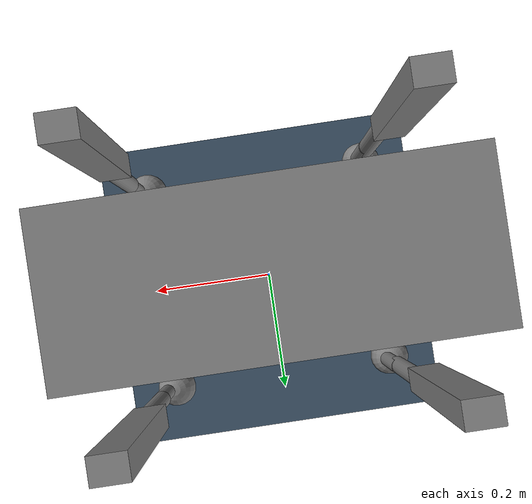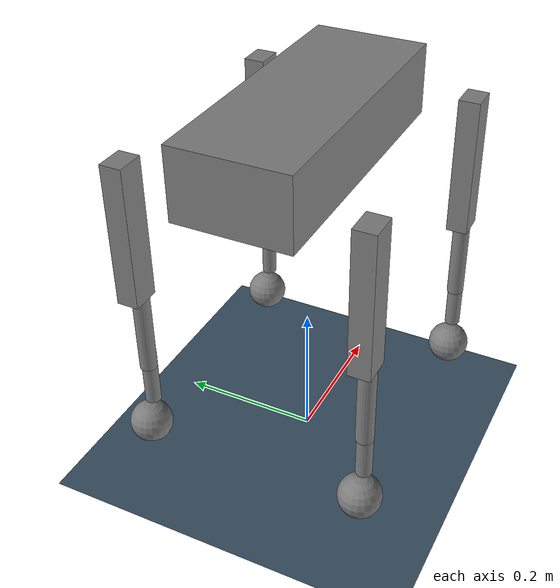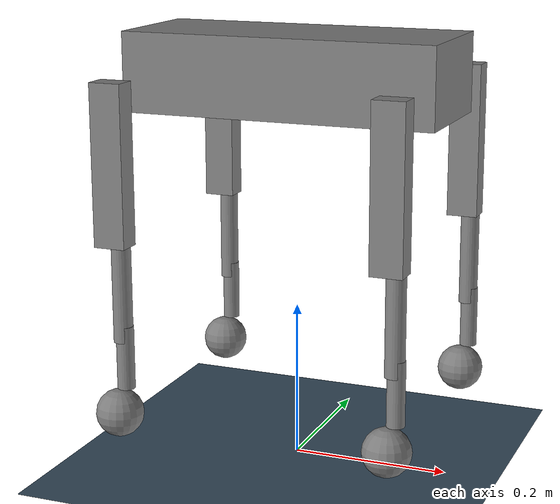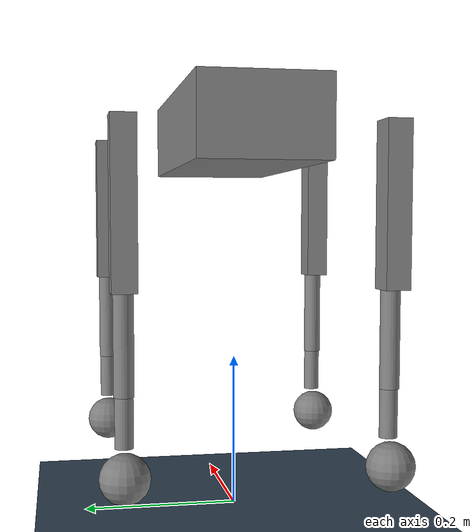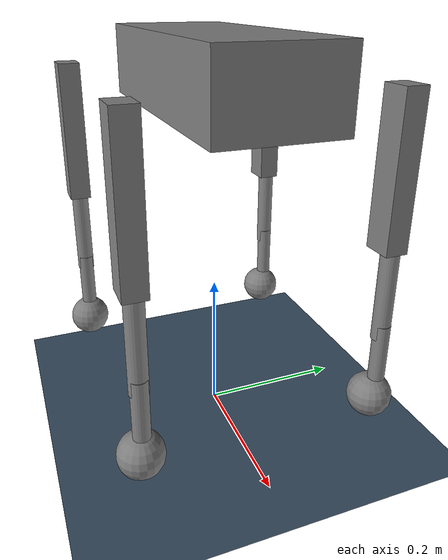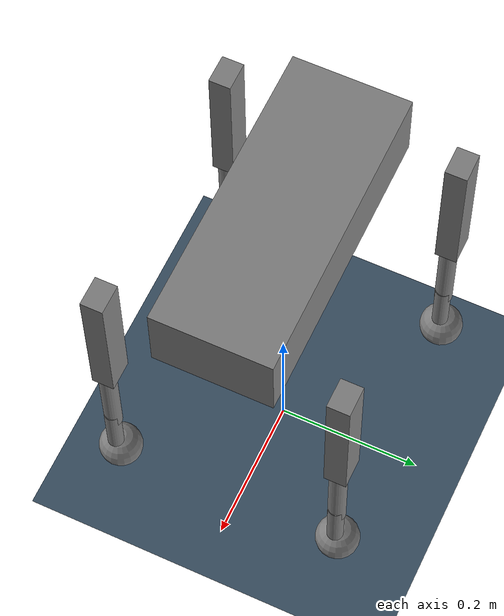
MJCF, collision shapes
<mujoco model="d1_scene">
  <include file="../model/robot.xml"/>
  <compiler meshdir="../model/assets"/>

  <statistic center="0 0 0.1" extent="1.0"/>
  <option timestep="0.005" gravity="0 0 -9.81" integrator="implicitfast" cone="elliptic" impratio="100"/>
  <visual>
    <headlight diffuse="0.82 0.86 0.9" ambient="0.42 0.48 0.54" specular="0.15 0.15 0.18"/>
    <global azimuth="120" elevation="-20"/>
  </visual>
  <asset>
    <texture type="skybox" builtin="gradient" rgb1="0.3 0.5 0.7" rgb2="0 0 0" width="512" height="3072"/>
    <texture type="2d" name="groundplane" builtin="checker" mark="edge" rgb1="0.28 0.38 0.46" rgb2="0.16 0.23 0.30" markrgb="0.56 0.64 0.70" width="300" height="300"/>
    <material name="groundplane" texture="groundplane" texuniform="true" texrepeat="5 5" reflectance="0.2"/>
  </asset>
  <worldbody>
    <light pos="0 0 3" dir="0 0 -1" directional="true"/>
    <geom name="floor" size="0 0 0.05" type="plane" material="groundplane" friction="0.8 0.02 0.01"/>
  </worldbody>
</mujoco>

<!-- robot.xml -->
<mujoco model="d1">
  <compiler angle="radian" meshdir="assets" autolimits="true" />

  <option cone="elliptic" impratio="100" />

  <default>
    <default class="d1">
      <geom friction="0.4" margin="0" condim="3" contype="1" conaffinity="0"/>
      <joint axis="0 1 0" damping="0.1" armature="0.01" frictionloss="0.2"/>
      <motor ctrlrange="-33.5 33.5"/>
      <default class="abad">
        <joint axis="1 0 0" range="-0.4887 0.4887"/>
      </default>
      <default class="hip">
        <joint range="-1.1519 2.967"/>
      </default>
      <default class="knee">
        <joint range="-2.723 -0.602"/>
        <motor ctrlrange="-45.43 45.43"/>
      </default>
      <default class="visual">
        <geom type="mesh" contype="0" conaffinity="0" group="2"/>
      </default>
      <default class="collision">
        <geom group="3" contype="1" conaffinity="0"/>
        <default class="foot">
          <geom size="0.022" pos="0 0 -0.21366" priority="1" condim="6"
            friction="0.4 0.02 0.01" contype="1" conaffinity="1"/>
        </default>
      </default>
    </default>
  </default>

  <asset>
    <material name="metal" rgba=".9 .95 .95 1" />
    <material name="black" rgba="0 0 0 1" />
    <material name="white" rgba="1 1 1 1" />
    <material name="gray" rgba="0.75294 0.75294 0.75294 1" />

    <mesh file="BASE_LINK.STL" />
    <mesh file="FL_ABAD_LINK.STL" />
    <mesh file="FL_HIP_LINK.STL" />
    <mesh file="FL_KNEE_LINK.STL" />
    <mesh file="FL_FOOT_LINK.STL" />
    <mesh file="FR_ABAD_LINK.STL" />
    <mesh file="FR_HIP_LINK.STL" />
    <mesh file="FR_KNEE_LINK.STL" />
    <mesh file="FR_FOOT_LINK.STL" />
    <mesh file="RL_ABAD_LINK.STL" />
    <mesh file="RL_HIP_LINK.STL" />
    <mesh file="RL_KNEE_LINK.STL" />
    <mesh file="RL_FOOT_LINK.STL" />
    <mesh file="RR_ABAD_LINK.STL" />
    <mesh file="RR_HIP_LINK.STL" />
    <mesh file="RR_KNEE_LINK.STL" />
    <mesh file="RR_FOOT_LINK.STL" />
  </asset>

  <worldbody>
    <body name="base_link" pos="0 0 0.5" childclass="d1">
      <inertial pos="0.0054 0 0.0061" mass="6.268"
        diaginertia="0.0274 0.085 0.0992" />
      <freejoint />
      <geom mesh="BASE_LINK" material="gray" class="visual" />
      <geom size="0.2 0.08 0.05" type="box" name="base_link_collision" class="collision" />
      <site name="imu" pos="0 0 0" />

      <!-- Front Left Leg -->
      <body name="FL_ABAD" pos="0.17449 0.062 0">
        <inertial pos="-0.027 -0.0155 0" mass="0.454"
          diaginertia="0.000251 0.000487 0.000541" />
        <joint name="FL_ABAD_JOINT" class="abad" />
        <geom mesh="FL_ABAD_LINK" material="gray" class="visual" />
        <geom size="0.04 0.03" pos="-0.02 -0.04 0" type="cylinder" quat="1 1 0 0" name="FL_ABAD_collision" class="collision" />

        <body name="FL_HIP" pos="0 0.097412 0">
          <inertial pos="-0.003 -0.043 -0.022" mass="1.502"
            diaginertia="0.00695 0.00476 0.00326" />
          <joint name="FL_HIP_JOINT" class="hip" />
          <geom mesh="FL_HIP_LINK" material="gray" class="visual" />
          <geom size="0.1 0.015 0.02" pos="0 0 -0.1" type="box" quat="0.707 0 0.707 0" name="FL_HIP_collision" class="collision" />

          <body name="FL_KNEE" pos="0 0 -0.2">
            <inertial pos="0.0077 0 -0.092" mass="0.207"
              diaginertia="0.00159 0.00162 0.00005" />
            <joint name="FL_KNEE_JOINT" class="knee" />
            <geom mesh="FL_KNEE_LINK" material="gray" class="visual" />
            <geom size="0.012 0.06" pos="0.008 0 -0.06" type="cylinder" name="FL_KNEE_collision" class="collision" />
            <geom size="0.011 0.04" pos="0.01 0 -0.14" type="cylinder" name="FL_KNEE_collision_2" class="collision" />
            <geom mesh="FL_FOOT_LINK" material="gray" class="visual" pos="0 0 -0.21366" />
            <geom name="FL" class="foot" />
            <site name="FL" pos="0 0 -0.21366" type="sphere" size="0.01" group="5"/>
            <body name="FL_FOOT" pos="0 0 -0.21366">
        <geom name="FL_foot_collision" type="sphere" size="0.03" contype="1" conaffinity="1" friction="0.8 0.02 0.01"/>
      </body>
          </body>
        </body>
      </body>

      <!-- Front Right Leg -->
      <body name="FR_ABAD" pos="0.17449 -0.062 0">
        <inertial pos="-0.027 0.0155 0" mass="0.454"
          diaginertia="0.000251 0.000487 0.000541" />
        <joint name="FR_ABAD_JOINT" class="abad" />
        <geom mesh="FR_ABAD_LINK" material="gray" class="visual" />
        <geom size="0.04 0.03" pos="-0.02 0.04 0" type="cylinder" quat="1 1 0 0" name="FR_ABAD_collision" class="collision" />

        <body name="FR_HIP" pos="0 -0.097399 0">
          <inertial pos="-0.003 0.043 -0.022" mass="1.508"
            diaginertia="0.00715 0.00496 0.00327" />
          <joint name="FR_HIP_JOINT" class="hip" />
          <geom mesh="FR_HIP_LINK" material="gray" class="visual" />
          <geom size="0.1 0.015 0.02" pos="0 0 -0.1" type="box" quat="0.707 0 0.707 0" name="FR_HIP_collision" class="collision" />

          <body name="FR_KNEE" pos="0 0 -0.2">
            <inertial pos="0.0077 0 -0.092" mass="0.207"
              diaginertia="0.00159 0.00162 0.00005" />
            <joint name="FR_KNEE_JOINT" class="knee" />
            <geom mesh="FR_KNEE_LINK" material="gray" class="visual" />
            <geom size="0.012 0.06" pos="0.008 0 -0.06" type="cylinder" name="FR_KNEE_collision" class="collision" />
            <geom size="0.011 0.04" pos="0.01 0 -0.14" type="cylinder" name="FR_KNEE_collision_2" class="collision" />
            <geom mesh="FR_FOOT_LINK" material="gray" class="visual" pos="0 0 -0.21366" />
            <geom name="FR" class="foot" />
            <site name="FR" pos="0 0 -0.21366" type="sphere" size="0.01" group="5"/>
            <body name="FR_FOOT" pos="0 0 -0.21366">
        <geom name="FR_foot_collision" type="sphere" size="0.03" contype="1" conaffinity="1" friction="0.8 0.02 0.01"/>
      </body>
          </body>
        </body>
      </body>

      <!-- Rear Left Leg -->
      <body name="RL_ABAD" pos="-0.17449 0.062 0">
        <inertial pos="0.027 -0.0155 0" mass="0.454"
          diaginertia="0.000251 0.000487 0.000541" />
        <joint name="RL_ABAD_JOINT" class="abad" />
        <geom mesh="RL_ABAD_LINK" material="gray" class="visual" />
        <geom size="0.04 0.03" pos="0.02 -0.04 0" type="cylinder" quat="1 1 0 0" name="RL_ABAD_collision" class="collision" />

        <body name="RL_HIP" pos="0 0.097412 0">
          <inertial pos="-0.003 -0.043 -0.022" mass="1.502"
            diaginertia="0.00695 0.00476 0.00326" />
          <joint name="RL_HIP_JOINT" class="hip" />
          <geom mesh="RL_HIP_LINK" material="gray" class="visual" />
          <geom size="0.1 0.015 0.02" pos="0 0 -0.1" type="box" quat="0.707 0 0.707 0" name="RL_HIP_collision" class="collision" />

          <body name="RL_KNEE" pos="0 0 -0.2">
            <inertial pos="0.0077 0 -0.092" mass="0.207"
              diaginertia="0.00159 0.00162 0.00005" />
            <joint name="RL_KNEE_JOINT" class="knee" />
            <geom mesh="RL_KNEE_LINK" material="gray" class="visual" />
            <geom size="0.012 0.06" pos="0.008 0 -0.06" type="cylinder" name="RL_KNEE_collision" class="collision" />
            <geom size="0.011 0.04" pos="0.01 0 -0.14" type="cylinder" name="RL_KNEE_collision_2" class="collision" />
            <geom mesh="RL_FOOT_LINK" material="gray" class="visual" pos="0 0 -0.21366" />
            <geom name="RL" class="foot" />
            <site name="RL" pos="0 0 -0.21366" type="sphere" size="0.01" group="5"/>
            <body name="RL_FOOT" pos="0 0 -0.21366">
        <geom name="RL_foot_collision" type="sphere" size="0.03" contype="1" conaffinity="1" friction="0.8 0.02 0.01"/>
      </body>
          </body>
        </body>
      </body>

      <!-- Rear Right Leg -->
      <body name="RR_ABAD" pos="-0.17449 -0.062 0">
        <inertial pos="0.027 0.0155 0" mass="0.454"
          diaginertia="0.000251 0.000487 0.000541" />
        <joint name="RR_ABAD_JOINT" class="abad" />
        <geom mesh="RR_ABAD_LINK" material="gray" class="visual" />
        <geom size="0.04 0.03" pos="0.02 0.04 0" type="cylinder" quat="1 1 0 0" name="RR_ABAD_collision" class="collision" />

        <body name="RR_HIP" pos="0 -0.0974 0">
          <inertial pos="-0.003 0.043 -0.022" mass="1.508"
            diaginertia="0.00715 0.00496 0.00327" />
          <joint name="RR_HIP_JOINT" class="hip" />
          <geom mesh="RR_HIP_LINK" material="gray" class="visual" />
          <geom size="0.1 0.015 0.02" pos="0 0 -0.1" type="box" quat="0.707 0 0.707 0" name="RR_HIP_collision" class="collision" />

          <body name="RR_KNEE" pos="0 0 -0.2">
            <inertial pos="0.0077 0 -0.092" mass="0.207"
              diaginertia="0.00159 0.00162 0.00005" />
            <joint name="RR_KNEE_JOINT" class="knee" />
            <geom mesh="RR_KNEE_LINK" material="gray" class="visual" />
            <geom size="0.012 0.06" pos="0.008 0 -0.06" type="cylinder" name="RR_KNEE_collision" class="collision" />
            <geom size="0.011 0.04" pos="0.01 0 -0.14" type="cylinder" name="RR_KNEE_collision_2" class="collision" />
            <geom mesh="RR_FOOT_LINK" material="gray" class="visual" pos="0 0 -0.21366" />
            <geom name="RR" class="foot" />
            <site name="RR" pos="0 0 -0.21366" type="sphere" size="0.01" group="5"/>
            <body name="RR_FOOT" pos="0 0 -0.21366">
        <geom name="RR_foot_collision" type="sphere" size="0.03" contype="1" conaffinity="1" friction="0.8 0.02 0.01"/>
      </body>
          </body>
        </body>
      </body>
    </body>
  </worldbody>

  <actuator>
    <motor class="abad" name="FR_abad" joint="FR_ABAD_JOINT" />
    <motor class="hip" name="FR_hip" joint="FR_HIP_JOINT" />
    <motor class="knee" name="FR_knee" joint="FR_KNEE_JOINT" />
    <motor class="abad" name="FL_abad" joint="FL_ABAD_JOINT" />
    <motor class="hip" name="FL_hip" joint="FL_HIP_JOINT" />
    <motor class="knee" name="FL_knee" joint="FL_KNEE_JOINT" />
    <motor class="abad" name="RR_abad" joint="RR_ABAD_JOINT" />
    <motor class="hip" name="RR_hip" joint="RR_HIP_JOINT" />
    <motor class="knee" name="RR_knee" joint="RR_KNEE_JOINT" />
    <motor class="abad" name="RL_abad" joint="RL_ABAD_JOINT" />
    <motor class="hip" name="RL_hip" joint="RL_HIP_JOINT" />
    <motor class="knee" name="RL_knee" joint="RL_KNEE_JOINT" />
  </actuator>

  <sensor>
    <velocimeter name="imu_lin_vel" site="imu"/>
    <gyro name="imu_ang_vel" site="imu"/>
    <jointpos name="FR_abad_pos" joint="FR_ABAD_JOINT" />
    <jointpos name="FR_hip_pos" joint="FR_HIP_JOINT" />
    <jointpos name="FR_knee_pos" joint="FR_KNEE_JOINT" />
    <jointpos name="FL_abad_pos" joint="FL_ABAD_JOINT" />
    <jointpos name="FL_hip_pos" joint="FL_HIP_JOINT" />
    <jointpos name="FL_knee_pos" joint="FL_KNEE_JOINT" />
    <jointpos name="RR_abad_pos" joint="RR_ABAD_JOINT" />
    <jointpos name="RR_hip_pos" joint="RR_HIP_JOINT" />
    <jointpos name="RR_knee_pos" joint="RR_KNEE_JOINT" />
    <jointpos name="RL_abad_pos" joint="RL_ABAD_JOINT" />
    <jointpos name="RL_hip_pos" joint="RL_HIP_JOINT" />
    <jointpos name="RL_knee_pos" joint="RL_KNEE_JOINT" />

    <jointvel name="FR_abad_vel" joint="FR_ABAD_JOINT" />
    <jointvel name="FR_hip_vel" joint="FR_HIP_JOINT" />
    <jointvel name="FR_knee_vel" joint="FR_KNEE_JOINT" />
    <jointvel name="FL_abad_vel" joint="FL_ABAD_JOINT" />
    <jointvel name="FL_hip_vel" joint="FL_HIP_JOINT" />
    <jointvel name="FL_knee_vel" joint="FL_KNEE_JOINT" />
    <jointvel name="RR_abad_vel" joint="RR_ABAD_JOINT" />
    <jointvel name="RR_hip_vel" joint="RR_HIP_JOINT" />
    <jointvel name="RR_knee_vel" joint="RR_KNEE_JOINT" />
    <jointvel name="RL_abad_vel" joint="RL_ABAD_JOINT" />
    <jointvel name="RL_hip_vel" joint="RL_HIP_JOINT" />
    <jointvel name="RL_knee_vel" joint="RL_KNEE_JOINT" />

    <jointactuatorfrc name="FR_abad_torque" joint="FR_ABAD_JOINT" noise="0.01" />
    <jointactuatorfrc name="FR_hip_torque" joint="FR_HIP_JOINT" noise="0.01" />
    <jointactuatorfrc name="FR_knee_torque" joint="FR_KNEE_JOINT" noise="0.01" />
    <jointactuatorfrc name="FL_abad_torque" joint="FL_ABAD_JOINT" noise="0.01" />
    <jointactuatorfrc name="FL_hip_torque" joint="FL_HIP_JOINT" noise="0.01" />
    <jointactuatorfrc name="FL_knee_torque" joint="FL_KNEE_JOINT" noise="0.01" />
    <jointactuatorfrc name="RR_abad_torque" joint="RR_ABAD_JOINT" noise="0.01" />
    <jointactuatorfrc name="RR_hip_torque" joint="RR_HIP_JOINT" noise="0.01" />
    <jointactuatorfrc name="RR_knee_torque" joint="RR_KNEE_JOINT" noise="0.01" />
    <jointactuatorfrc name="RL_abad_torque" joint="RL_ABAD_JOINT" noise="0.01" />
    <jointactuatorfrc name="RL_hip_torque" joint="RL_HIP_JOINT" noise="0.01" />
    <jointactuatorfrc name="RL_knee_torque" joint="RL_KNEE_JOINT" noise="0.01" />

    <framequat name="imu_quat" objtype="site" objname="imu" />
    <gyro name="imu_gyro" site="imu" />
    <accelerometer name="imu_acc" site="imu" />

    <framepos name="frame_pos" objtype="site" objname="imu" />
    <framelinvel name="frame_vel" objtype="site" objname="imu" />
  </sensor>

  <keyframe>
    <key name="home" qpos="0 0 0.5 1 0 0 0 0 0.8 -1.5 0 0.8 -1.5 0 0.8 -1.5 0 0.8 -1.5"
      ctrl="0 0.8 -1.5 0 0.8 -1.5 0 0.8 -1.5 0 0.8 -1.5" />
  </keyframe>
</mujoco>
